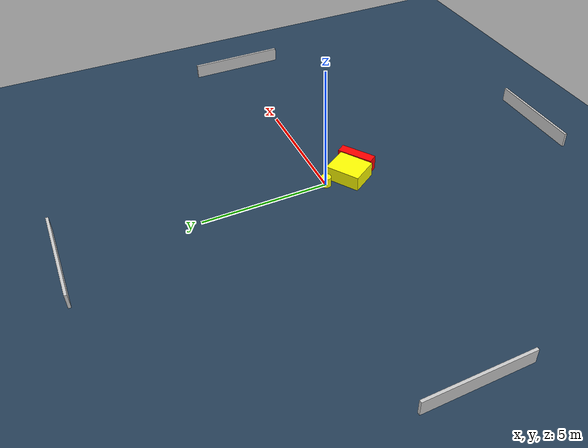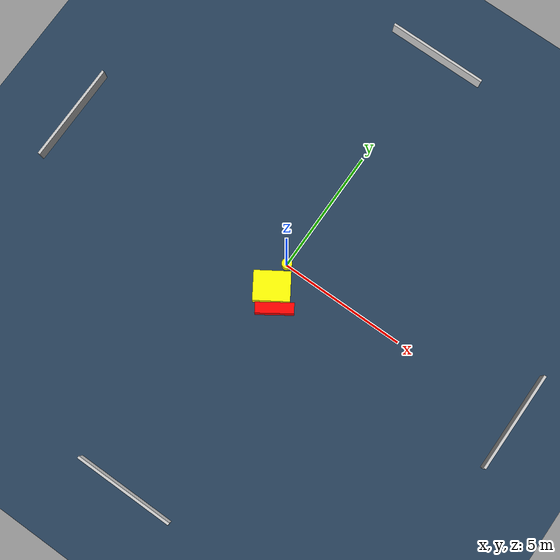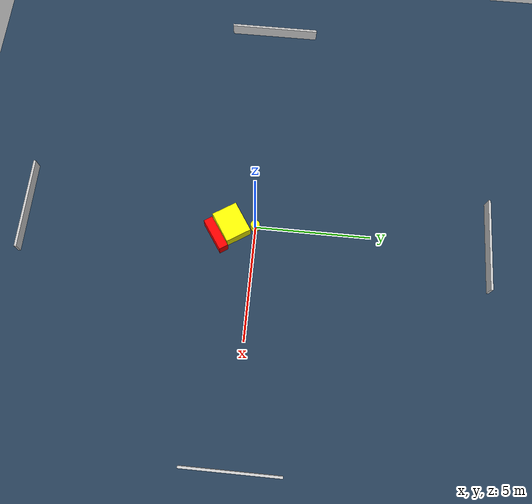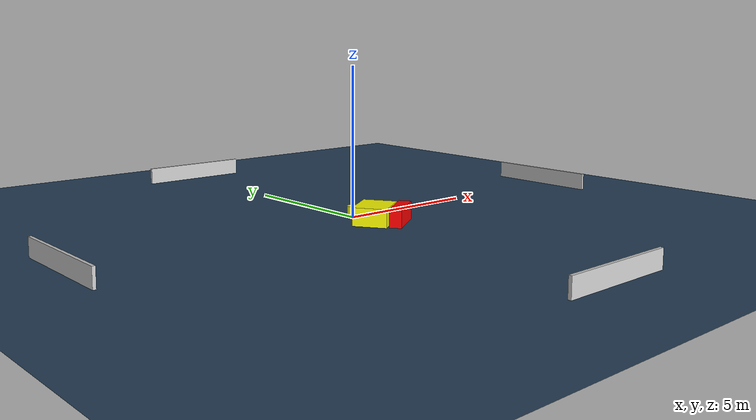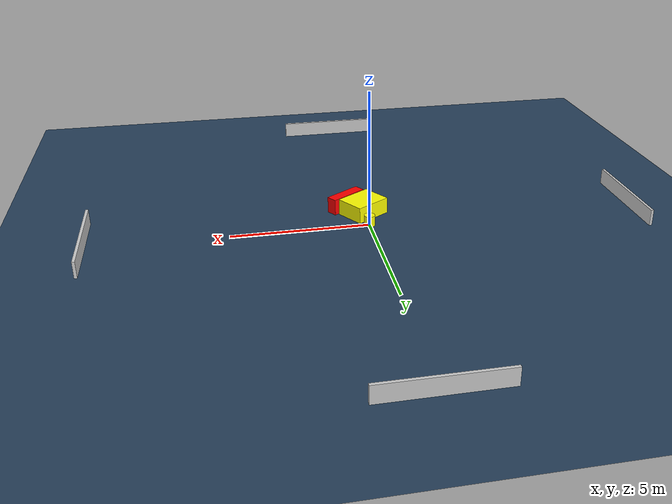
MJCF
<?xml version="1.0" ?>
<mujoco model="generated_environment">
  <option timestep="0.01" integrator="RK4" cone="elliptic"/>
  <default>
    <geom density="1"/>
  </default>
  <asset>
    <texture builtin="gradient" height="3072" name="skybox" rgb1="0.3 0.5 0.7" rgb2="0 0 0" type="skybox" width="512"/>
    <texture builtin="checker" height="300" name="groundplane" rgb1="0.2 0.3 0.4" rgb2="0.1 0.2 0.3" type="2d" width="300"/>
    <material name="groundplane" reflectance="0.2" texrepeat="5 5" texture="groundplane"/>
  </asset>
  <worldbody>
    <light dir="0 0 -1" directional="true" pos="0 0 1.5"/>
    <geom condim="3" friction="0.5 0.005 0.001" material="groundplane" name="floor" pos="0 0 0" size="0 0 0.05" type="plane"/>
    <body name="walls">
      <geom name="wall_1" condim="4" pos="-10.0 0.0 0.3" rgba="0.800000011920929 0.800000011920929 0.800000011920929 1.0" size="0.05 2.0 0.3" type="box"/>
      <geom name="wall_2" condim="4" pos="10.0 0.0 0.3" rgba="0.800000011920929 0.800000011920929 0.800000011920929 1.0" size="0.05 2.0 0.3" type="box"/>
      <geom name="wall_3" condim="4" pos="0.0 -10.0 0.3" rgba="0.800000011920929 0.800000011920929 0.800000011920929 1.0" size="2.0 0.05 0.3" type="box"/>
      <geom name="wall_4" condim="4" pos="0.0 10.0 0.3" rgba="0.800000011920929 0.800000011920929 0.800000011920929 1.0" size="2.0 0.05 0.3" type="box"/>
    </body>
    <body name="robot">
      <joint name="joint_x" type="slide" pos="0 0 0" axis="1 0 0"/>
      <joint name="joint_y" type="slide" pos="0 0 0" axis="0 1 0"/>
      <geom name="robot" type="cylinder" pos="0.0 0.0 0.2" size="0.2 0.2 0.0" mass="5.0" friction="1.0 0.005 0.0001" condim="4" rgba="1.0 1.0 0.0 1.0"/>
    </body>
    <body name="obstacle_1_movable">
      <geom name="obstacle_1_movable" condim="4" pos="0.04538719738411751 -1.0241006828345185 0.3" euler="0 0 122.82476578261321" friction="0.0 0.005 0.001" rgba="1.0 1.0 0.0 1.0" size="0.5645317547373134 0.6971994888802189 0.3" type="box" mass="0.1"/>
      <joint type="free"/>
    </body>
    <body name="obstacle_2_static">
      <geom name="obstacle_2_static" condim="4" pos="0.5978523925330531 -1.6322939101527485 0.3" euler="0 0 303.8652737293264" friction="0.0 0.005 0.001" rgba="1.0 0.0 0.0 1.0" size="0.20188018467554958 0.7258516557302617 0.3" type="box"/>
    </body>
  </worldbody>
  <actuator>
    <motor name="actuator_x" joint="joint_x" gear="1" ctrlrange="-1 1"/>
    <motor name="actuator_y" joint="joint_y" gear="1" ctrlrange="-1 1"/>
  </actuator>
</mujoco>
